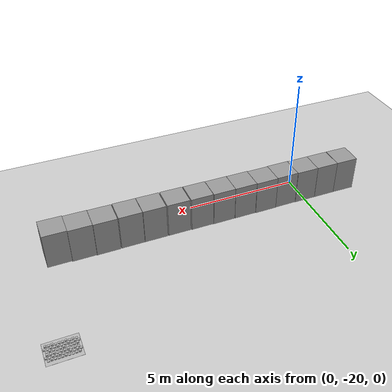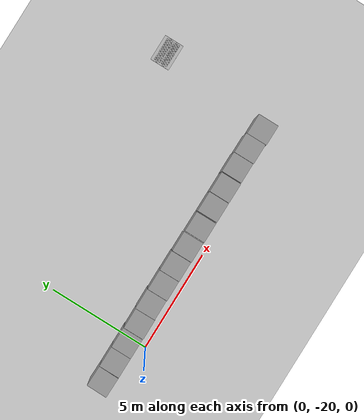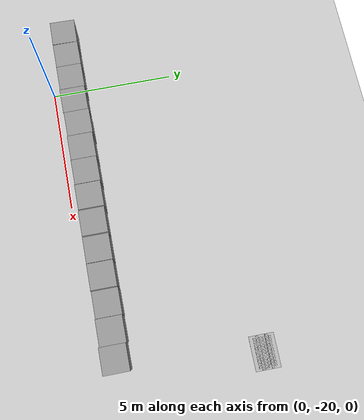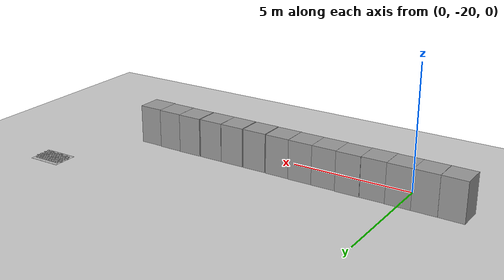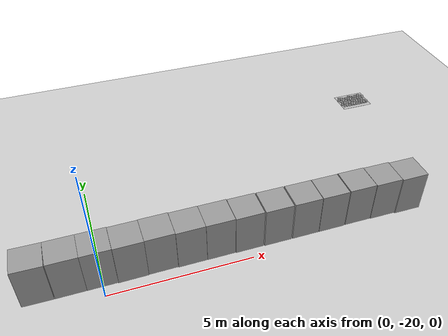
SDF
<sdf version="1.6">
 <world name="default">
  <model name="ground_plane">
   <static>1</static>
   <link name="link">
    <collision name="collision">
     <geometry><plane><normal>0 0 1</normal><size>100 100</size></plane></geometry>
     <surface><friction><ode><mu>100</mu><mu2>50</mu2></ode></friction></surface>
    </collision>
    <visual name="visual">
     <cast_shadows>0</cast_shadows>
     <geometry><plane><normal>0 0 1</normal><size>100 100</size></plane></geometry>
     <material>
      <script><uri>file://media/materials/scripts/gazebo.material</uri><name>Gazebo/Grey</name></script>
     </material>
    </visual>
   </link>
  </model>
  <model name="frc2016_roughterrain_clone_0_clone_clone_3_clone_1_clone_0_clone_clone_2_clone_clone_1">
   <static>1</static>
   <link name="link">
    <visual name="platform">
     <pose>0 0 0.08269 0 -0 0</pose>
     <geometry><box><size>1.27 0.5969 0.003175</size></box></geometry>
    </visual>
    <collision name="platform">
     <pose>0 0 0.08269 0 -0 0</pose>
     <geometry><box><size>1.27 0.5969 0.003175</size></box></geometry>
    </collision>
    <visual name="row1_block1_sm">
     <pose>0.51435 0.1143 0.09698 0 -0 0</pose>
     <geometry><box><size>0.0762 0.0762 0.0254</size></box></geometry>
    </visual>
    <collision name="row1_block1_sm">
     <pose>0.51435 0.1143 0.09698 0 -0 0</pose>
     <geometry><box><size>0.0762 0.0762 0.0254</size></box></geometry>
    </collision>
    <visual name="row1_block2_lg">
     <pose>0.40005 0.1143 0.12238 0 -0 0</pose>
     <geometry><box><size>0.0762 0.0762 0.0762</size></box></geometry>
    </visual>
    <collision name="row1_block2_lg">
     <pose>0.40005 0.1143 0.12238 0 -0 0</pose>
     <geometry><box><size>0.0762 0.0762 0.0762</size></box></geometry>
    </collision>
    <visual name="row1_block3_md">
     <pose>0.28575 0.1143 0.10968 0 -0 0</pose>
     <geometry><box><size>0.0762 0.0762 0.0508</size></box></geometry>
    </visual>
    <collision name="row1_block3_md">
     <pose>0.28575 0.1143 0.10968 0 -0 0</pose>
     <geometry><box><size>0.0762 0.0762 0.0508</size></box></geometry>
    </collision>
    <visual name="row1_block4_sm">
     <pose>0.17145 0.1143 0.09698 0 -0 0</pose>
     <geometry><box><size>0.0762 0.0762 0.0254</size></box></geometry>
    </visual>
    <collision name="row1_block4_sm">
     <pose>0.17145 0.1143 0.09698 0 -0 0</pose>
     <geometry><box><size>0.0762 0.0762 0.0254</size></box></geometry>
    </collision>
    <visual name="row1_block5_md">
     <pose>0.05715 0.1143 0.10968 0 -0 0</pose>
     <geometry><box><size>0.0762 0.0762 0.0508</size></box></geometry>
    </visual>
    <collision name="row1_block5_md">
     <pose>0.05715 0.1143 0.10968 0 -0 0</pose>
     <geometry><box><size>0.0762 0.0762 0.0508</size></box></geometry>
    </collision>
    <visual name="row1_block6_lg">
     <pose>-0.05715 0.1143 0.12238 0 -0 0</pose>
     <geometry><box><size>0.0762 0.0762 0.0762</size></box></geometry>
    </visual>
    <collision name="row1_block6_lg">
     <pose>-0.05715 0.1143 0.12238 0 -0 0</pose>
     <geometry><box><size>0.0762 0.0762 0.0762</size></box></geometry>
    </collision>
    <visual name="row1_block7_sm">
     <pose>-0.17145 0.1143 0.09698 0 -0 0</pose>
     <geometry><box><size>0.0762 0.0762 0.0254</size></box></geometry>
    </visual>
    <collision name="row1_block7_sm">
     <pose>-0.17145 0.1143 0.09698 0 -0 0</pose>
     <geometry><box><size>0.0762 0.0762 0.0254</size></box></geometry>
    </collision>
    <visual name="row1_block8_sm">
     <pose>-0.28575 0.1143 0.09698 0 -0 0</pose>
     <geometry><box><size>0.0762 0.0762 0.0254</size></box></geometry>
    </visual>
    <collision name="row1_block8_sm">
     <pose>-0.28575 0.1143 0.09698 0 -0 0</pose>
     <geometry><box><size>0.0762 0.0762 0.0254</size></box></geometry>
    </collision>
    <visual name="row1_block9_md">
     <pose>-0.40005 0.1143 0.10968 0 -0 0</pose>
     <geometry><box><size>0.0762 0.0762 0.0508</size></box></geometry>
    </visual>
    <collision name="row1_block9_md">
     <pose>-0.40005 0.1143 0.10968 0 -0 0</pose>
     <geometry><box><size>0.0762 0.0762 0.0508</size></box></geometry>
    </collision>
    <visual name="row1_block10_lg">
     <pose>-0.51435 0.1143 0.12238 0 -0 0</pose>
     <geometry><box><size>0.0762 0.0762 0.0762</size></box></geometry>
    </visual>
    <collision name="row1_block10_lg">
     <pose>-0.51435 0.1143 0.12238 0 -0 0</pose>
     <geometry><box><size>0.0762 0.0762 0.0762</size></box></geometry>
    </collision>
    <visual name="row2_block1_md">
     <pose>0.5715 0 0.10968 0 -0 0</pose>
     <geometry><box><size>0.0762 0.0762 0.0508</size></box></geometry>
    </visual>
    <collision name="row2_block1_md">
     <pose>0.5715 0 0.10968 0 -0 0</pose>
     <geometry><box><size>0.0762 0.0762 0.0508</size></box></geometry>
    </collision>
    <visual name="row2_block2_sm">
     <pose>0.4572 0 0.09698 0 -0 0</pose>
     <geometry><box><size>0.0762 0.0762 0.0254</size></box></geometry>
    </visual>
    <collision name="row2_block2_sm">
     <pose>0.4572 0 0.09698 0 -0 0</pose>
     <geometry><box><size>0.0762 0.0762 0.0254</size></box></geometry>
    </collision>
    <visual name="row2_block3_lg">
     <pose>0.3429 0 0.12238 0 -0 0</pose>
     <geometry><box><size>0.0762 0.0762 0.0762</size></box></geometry>
    </visual>
    <collision name="row2_block3_lg">
     <pose>0.3429 0 0.12238 0 -0 0</pose>
     <geometry><box><size>0.0762 0.0762 0.0762</size></box></geometry>
    </collision>
    <visual name="row2_block4_md">
     <pose>0.2286 0 0.10968 0 -0 0</pose>
     <geometry><box><size>0.0762 0.0762 0.0508</size></box></geometry>
    </visual>
    <collision name="row2_block4_md">
     <pose>0.2286 0 0.10968 0 -0 0</pose>
     <geometry><box><size>0.0762 0.0762 0.0508</size></box></geometry>
    </collision>
    <visual name="row2_block5_lg">
     <pose>0.1143 0 0.12238 0 -0 0</pose>
     <geometry><box><size>0.0762 0.0762 0.0762</size></box></geometry>
    </visual>
    <collision name="row2_block5_lg">
     <pose>0.1143 0 0.12238 0 -0 0</pose>
     <geometry><box><size>0.0762 0.0762 0.0762</size></box></geometry>
    </collision>
    <visual name="row2_block6_sm">
     <pose>0 0 0.09698 0 -0 0</pose>
     <geometry><box><size>0.0762 0.0762 0.0254</size></box></geometry>
    </visual>
    <collision name="row2_block6_sm">
     <pose>0 0 0.09698 0 -0 0</pose>
     <geometry><box><size>0.0762 0.0762 0.0254</size></box></geometry>
    </collision>
    <visual name="row2_block7_md">
     <pose>-0.1143 0 0.10968 0 -0 0</pose>
     <geometry><box><size>0.0762 0.0762 0.0508</size></box></geometry>
    </visual>
    <collision name="row2_block7_md">
     <pose>-0.1143 0 0.10968 0 -0 0</pose>
     <geometry><box><size>0.0762 0.0762 0.0508</size></box></geometry>
    </collision>
    <visual name="row2_block8_lg">
     <pose>-0.2286 0 0.12238 0 -0 0</pose>
     <geometry><box><size>0.0762 0.0762 0.0762</size></box></geometry>
    </visual>
    <collision name="row2_block8_lg">
     <pose>-0.2286 0 0.12238 0 -0 0</pose>
     <geometry><box><size>0.0762 0.0762 0.0762</size></box></geometry>
    </collision>
    <visual name="row2_block9_sm">
     <pose>-0.3429 0 0.09698 0 -0 0</pose>
     <geometry><box><size>0.0762 0.0762 0.0254</size></box></geometry>
    </visual>
    <collision name="row2_block9_sm">
     <pose>-0.3429 0 0.09698 0 -0 0</pose>
     <geometry><box><size>0.0762 0.0762 0.0254</size></box></geometry>
    </collision>
    <visual name="row2_block10_lg">
     <pose>-0.4572 0 0.12238 0 -0 0</pose>
     <geometry><box><size>0.0762 0.0762 0.0762</size></box></geometry>
    </visual>
    <collision name="row2_block10_lg">
     <pose>-0.4572 0 0.12238 0 -0 0</pose>
     <geometry><box><size>0.0762 0.0762 0.0762</size></box></geometry>
    </collision>
    <visual name="row2_block11_md">
     <pose>-0.5715 0 0.10968 0 -0 0</pose>
     <geometry><box><size>0.0762 0.0762 0.0508</size></box></geometry>
    </visual>
    <collision name="row2_block11_md">
     <pose>-0.5715 0 0.10968 0 -0 0</pose>
     <geometry><box><size>0.0762 0.0762 0.0508</size></box></geometry>
    </collision>
    <visual name="row3_block1_lg">
     <pose>0.51435 -0.1143 0.12238 0 -0 0</pose>
     <geometry><box><size>0.0762 0.0762 0.0762</size></box></geometry>
    </visual>
    <collision name="row3_block1_lg">
     <pose>0.51435 -0.1143 0.12238 0 -0 0</pose>
     <geometry><box><size>0.0762 0.0762 0.0762</size></box></geometry>
    </collision>
    <visual name="row3_block2_md">
     <pose>0.40005 -0.1143 0.10968 0 -0 0</pose>
     <geometry><box><size>0.0762 0.0762 0.0508</size></box></geometry>
    </visual>
    <collision name="row3_block2_md">
     <pose>0.40005 -0.1143 0.10968 0 -0 0</pose>
     <geometry><box><size>0.0762 0.0762 0.0508</size></box></geometry>
    </collision>
    <visual name="row3_block3_lg">
     <pose>0.28575 -0.1143 0.12238 0 -0 0</pose>
     <geometry><box><size>0.0762 0.0762 0.0762</size></box></geometry>
    </visual>
    <collision name="row3_block3_lg">
     <pose>0.28575 -0.1143 0.12238 0 -0 0</pose>
     <geometry><box><size>0.0762 0.0762 0.0762</size></box></geometry>
    </collision>
    <visual name="row3_block4_sm">
     <pose>0.17145 -0.1143 0.09698 0 -0 0</pose>
     <geometry><box><size>0.0762 0.0762 0.0254</size></box></geometry>
    </visual>
    <collision name="row3_block4_sm">
     <pose>0.17145 -0.1143 0.09698 0 -0 0</pose>
     <geometry><box><size>0.0762 0.0762 0.0254</size></box></geometry>
    </collision>
    <visual name="row3_block5_md">
     <pose>0.05715 -0.1143 0.10968 0 -0 0</pose>
     <geometry><box><size>0.0762 0.0762 0.0508</size></box></geometry>
    </visual>
    <collision name="row3_block5_md">
     <pose>0.05715 -0.1143 0.10968 0 -0 0</pose>
     <geometry><box><size>0.0762 0.0762 0.0508</size></box></geometry>
    </collision>
    <visual name="row3_block6_md">
     <pose>-0.05715 -0.1143 0.10968 0 -0 0</pose>
     <geometry><box><size>0.0762 0.0762 0.0508</size></box></geometry>
    </visual>
    <collision name="row3_block6_md">
     <pose>-0.05715 -0.1143 0.10968 0 -0 0</pose>
     <geometry><box><size>0.0762 0.0762 0.0508</size></box></geometry>
    </collision>
    <visual name="row3_block7_lg">
     <pose>-0.17145 -0.1143 0.12238 0 -0 0</pose>
     <geometry><box><size>0.0762 0.0762 0.0762</size></box></geometry>
    </visual>
    <collision name="row3_block7_lg">
     <pose>-0.17145 -0.1143 0.12238 0 -0 0</pose>
     <geometry><box><size>0.0762 0.0762 0.0762</size></box></geometry>
    </collision>
    <visual name="row3_block8_sm">
     <pose>-0.28575 -0.1143 0.09698 0 -0 0</pose>
     <geometry><box><size>0.0762 0.0762 0.0254</size></box></geometry>
    </visual>
    <collision name="row3_block8_sm">
     <pose>-0.28575 -0.1143 0.09698 0 -0 0</pose>
     <geometry><box><size>0.0762 0.0762 0.0254</size></box></geometry>
    </collision>
    <visual name="row3_block9_md">
     <pose>-0.40005 -0.1143 0.10968 0 -0 0</pose>
     <geometry><box><size>0.0762 0.0762 0.0508</size></box></geometry>
    </visual>
    <collision name="row3_block9_md">
     <pose>-0.40005 -0.1143 0.10968 0 -0 0</pose>
     <geometry><box><size>0.0762 0.0762 0.0508</size></box></geometry>
    </collision>
    <visual name="row3_block10_sm">
     <pose>-0.51435 -0.1143 0.09698 0 -0 0</pose>
     <geometry><box><size>0.0762 0.0762 0.0254</size></box></geometry>
    </visual>
    <collision name="row3_block10_sm">
     <pose>-0.51435 -0.1143 0.09698 0 -0 0</pose>
     <geometry><box><size>0.0762 0.0762 0.0254</size></box></geometry>
    </collision>
   </link>
   <pose>11.9075 -13.555 0.826533 0 -0 0</pose>
  </model>
  <model name="frc2016_roughterrain_clone_0_clone_clone_3_clone_1_clone_0_clone_clone_2_clone_clone_1_clone">
   <static>1</static>
   <link name="link">
    <visual name="platform">
     <pose>0 0 0.08269 0 -0 0</pose>
     <geometry><box><size>1.27 0.5969 0.003175</size></box></geometry>
    </visual>
    <collision name="platform">
     <pose>0 0 0.08269 0 -0 0</pose>
     <geometry><box><size>1.27 0.5969 0.003175</size></box></geometry>
    </collision>
    <visual name="row1_block1_sm">
     <pose>0.51435 0.1143 0.09698 0 -0 0</pose>
     <geometry><box><size>0.0762 0.0762 0.0254</size></box></geometry>
    </visual>
    <collision name="row1_block1_sm">
     <pose>0.51435 0.1143 0.09698 0 -0 0</pose>
     <geometry><box><size>0.0762 0.0762 0.0254</size></box></geometry>
    </collision>
    <visual name="row1_block2_lg">
     <pose>0.40005 0.1143 0.12238 0 -0 0</pose>
     <geometry><box><size>0.0762 0.0762 0.0762</size></box></geometry>
    </visual>
    <collision name="row1_block2_lg">
     <pose>0.40005 0.1143 0.12238 0 -0 0</pose>
     <geometry><box><size>0.0762 0.0762 0.0762</size></box></geometry>
    </collision>
    <visual name="row1_block3_md">
     <pose>0.28575 0.1143 0.10968 0 -0 0</pose>
     <geometry><box><size>0.0762 0.0762 0.0508</size></box></geometry>
    </visual>
    <collision name="row1_block3_md">
     <pose>0.28575 0.1143 0.10968 0 -0 0</pose>
     <geometry><box><size>0.0762 0.0762 0.0508</size></box></geometry>
    </collision>
    <visual name="row1_block4_sm">
     <pose>0.17145 0.1143 0.09698 0 -0 0</pose>
     <geometry><box><size>0.0762 0.0762 0.0254</size></box></geometry>
    </visual>
    <collision name="row1_block4_sm">
     <pose>0.17145 0.1143 0.09698 0 -0 0</pose>
     <geometry><box><size>0.0762 0.0762 0.0254</size></box></geometry>
    </collision>
    <visual name="row1_block5_md">
     <pose>0.05715 0.1143 0.10968 0 -0 0</pose>
     <geometry><box><size>0.0762 0.0762 0.0508</size></box></geometry>
    </visual>
    <collision name="row1_block5_md">
     <pose>0.05715 0.1143 0.10968 0 -0 0</pose>
     <geometry><box><size>0.0762 0.0762 0.0508</size></box></geometry>
    </collision>
    <visual name="row1_block6_lg">
     <pose>-0.05715 0.1143 0.12238 0 -0 0</pose>
     <geometry><box><size>0.0762 0.0762 0.0762</size></box></geometry>
    </visual>
    <collision name="row1_block6_lg">
     <pose>-0.05715 0.1143 0.12238 0 -0 0</pose>
     <geometry><box><size>0.0762 0.0762 0.0762</size></box></geometry>
    </collision>
    <visual name="row1_block7_sm">
     <pose>-0.17145 0.1143 0.09698 0 -0 0</pose>
     <geometry><box><size>0.0762 0.0762 0.0254</size></box></geometry>
    </visual>
    <collision name="row1_block7_sm">
     <pose>-0.17145 0.1143 0.09698 0 -0 0</pose>
     <geometry><box><size>0.0762 0.0762 0.0254</size></box></geometry>
    </collision>
    <visual name="row1_block8_sm">
     <pose>-0.28575 0.1143 0.09698 0 -0 0</pose>
     <geometry><box><size>0.0762 0.0762 0.0254</size></box></geometry>
    </visual>
    <collision name="row1_block8_sm">
     <pose>-0.28575 0.1143 0.09698 0 -0 0</pose>
     <geometry><box><size>0.0762 0.0762 0.0254</size></box></geometry>
    </collision>
    <visual name="row1_block9_md">
     <pose>-0.40005 0.1143 0.10968 0 -0 0</pose>
     <geometry><box><size>0.0762 0.0762 0.0508</size></box></geometry>
    </visual>
    <collision name="row1_block9_md">
     <pose>-0.40005 0.1143 0.10968 0 -0 0</pose>
     <geometry><box><size>0.0762 0.0762 0.0508</size></box></geometry>
    </collision>
    <visual name="row1_block10_lg">
     <pose>-0.51435 0.1143 0.12238 0 -0 0</pose>
     <geometry><box><size>0.0762 0.0762 0.0762</size></box></geometry>
    </visual>
    <collision name="row1_block10_lg">
     <pose>-0.51435 0.1143 0.12238 0 -0 0</pose>
     <geometry><box><size>0.0762 0.0762 0.0762</size></box></geometry>
    </collision>
    <visual name="row2_block1_md">
     <pose>0.5715 0 0.10968 0 -0 0</pose>
     <geometry><box><size>0.0762 0.0762 0.0508</size></box></geometry>
    </visual>
    <collision name="row2_block1_md">
     <pose>0.5715 0 0.10968 0 -0 0</pose>
     <geometry><box><size>0.0762 0.0762 0.0508</size></box></geometry>
    </collision>
    <visual name="row2_block2_sm">
     <pose>0.4572 0 0.09698 0 -0 0</pose>
     <geometry><box><size>0.0762 0.0762 0.0254</size></box></geometry>
    </visual>
    <collision name="row2_block2_sm">
     <pose>0.4572 0 0.09698 0 -0 0</pose>
     <geometry><box><size>0.0762 0.0762 0.0254</size></box></geometry>
    </collision>
    <visual name="row2_block3_lg">
     <pose>0.3429 0 0.12238 0 -0 0</pose>
     <geometry><box><size>0.0762 0.0762 0.0762</size></box></geometry>
    </visual>
    <collision name="row2_block3_lg">
     <pose>0.3429 0 0.12238 0 -0 0</pose>
     <geometry><box><size>0.0762 0.0762 0.0762</size></box></geometry>
    </collision>
    <visual name="row2_block4_md">
     <pose>0.2286 0 0.10968 0 -0 0</pose>
     <geometry><box><size>0.0762 0.0762 0.0508</size></box></geometry>
    </visual>
    <collision name="row2_block4_md">
     <pose>0.2286 0 0.10968 0 -0 0</pose>
     <geometry><box><size>0.0762 0.0762 0.0508</size></box></geometry>
    </collision>
    <visual name="row2_block5_lg">
     <pose>0.1143 0 0.12238 0 -0 0</pose>
     <geometry><box><size>0.0762 0.0762 0.0762</size></box></geometry>
    </visual>
    <collision name="row2_block5_lg">
     <pose>0.1143 0 0.12238 0 -0 0</pose>
     <geometry><box><size>0.0762 0.0762 0.0762</size></box></geometry>
    </collision>
    <visual name="row2_block6_sm">
     <pose>0 0 0.09698 0 -0 0</pose>
     <geometry><box><size>0.0762 0.0762 0.0254</size></box></geometry>
    </visual>
    <collision name="row2_block6_sm">
     <pose>0 0 0.09698 0 -0 0</pose>
     <geometry><box><size>0.0762 0.0762 0.0254</size></box></geometry>
    </collision>
    <visual name="row2_block7_md">
     <pose>-0.1143 0 0.10968 0 -0 0</pose>
     <geometry><box><size>0.0762 0.0762 0.0508</size></box></geometry>
    </visual>
    <collision name="row2_block7_md">
     <pose>-0.1143 0 0.10968 0 -0 0</pose>
     <geometry><box><size>0.0762 0.0762 0.0508</size></box></geometry>
    </collision>
    <visual name="row2_block8_lg">
     <pose>-0.2286 0 0.12238 0 -0 0</pose>
     <geometry><box><size>0.0762 0.0762 0.0762</size></box></geometry>
    </visual>
    <collision name="row2_block8_lg">
     <pose>-0.2286 0 0.12238 0 -0 0</pose>
     <geometry><box><size>0.0762 0.0762 0.0762</size></box></geometry>
    </collision>
    <visual name="row2_block9_sm">
     <pose>-0.3429 0 0.09698 0 -0 0</pose>
     <geometry><box><size>0.0762 0.0762 0.0254</size></box></geometry>
    </visual>
    <collision name="row2_block9_sm">
     <pose>-0.3429 0 0.09698 0 -0 0</pose>
     <geometry><box><size>0.0762 0.0762 0.0254</size></box></geometry>
    </collision>
    <visual name="row2_block10_lg">
     <pose>-0.4572 0 0.12238 0 -0 0</pose>
     <geometry><box><size>0.0762 0.0762 0.0762</size></box></geometry>
    </visual>
    <collision name="row2_block10_lg">
     <pose>-0.4572 0 0.12238 0 -0 0</pose>
     <geometry><box><size>0.0762 0.0762 0.0762</size></box></geometry>
    </collision>
    <visual name="row2_block11_md">
     <pose>-0.5715 0 0.10968 0 -0 0</pose>
     <geometry><box><size>0.0762 0.0762 0.0508</size></box></geometry>
    </visual>
    <collision name="row2_block11_md">
     <pose>-0.5715 0 0.10968 0 -0 0</pose>
     <geometry><box><size>0.0762 0.0762 0.0508</size></box></geometry>
    </collision>
    <visual name="row3_block1_lg">
     <pose>0.51435 -0.1143 0.12238 0 -0 0</pose>
     <geometry><box><size>0.0762 0.0762 0.0762</size></box></geometry>
    </visual>
    <collision name="row3_block1_lg">
     <pose>0.51435 -0.1143 0.12238 0 -0 0</pose>
     <geometry><box><size>0.0762 0.0762 0.0762</size></box></geometry>
    </collision>
    <visual name="row3_block2_md">
     <pose>0.40005 -0.1143 0.10968 0 -0 0</pose>
     <geometry><box><size>0.0762 0.0762 0.0508</size></box></geometry>
    </visual>
    <collision name="row3_block2_md">
     <pose>0.40005 -0.1143 0.10968 0 -0 0</pose>
     <geometry><box><size>0.0762 0.0762 0.0508</size></box></geometry>
    </collision>
    <visual name="row3_block3_lg">
     <pose>0.28575 -0.1143 0.12238 0 -0 0</pose>
     <geometry><box><size>0.0762 0.0762 0.0762</size></box></geometry>
    </visual>
    <collision name="row3_block3_lg">
     <pose>0.28575 -0.1143 0.12238 0 -0 0</pose>
     <geometry><box><size>0.0762 0.0762 0.0762</size></box></geometry>
    </collision>
    <visual name="row3_block4_sm">
     <pose>0.17145 -0.1143 0.09698 0 -0 0</pose>
     <geometry><box><size>0.0762 0.0762 0.0254</size></box></geometry>
    </visual>
    <collision name="row3_block4_sm">
     <pose>0.17145 -0.1143 0.09698 0 -0 0</pose>
     <geometry><box><size>0.0762 0.0762 0.0254</size></box></geometry>
    </collision>
    <visual name="row3_block5_md">
     <pose>0.05715 -0.1143 0.10968 0 -0 0</pose>
     <geometry><box><size>0.0762 0.0762 0.0508</size></box></geometry>
    </visual>
    <collision name="row3_block5_md">
     <pose>0.05715 -0.1143 0.10968 0 -0 0</pose>
     <geometry><box><size>0.0762 0.0762 0.0508</size></box></geometry>
    </collision>
    <visual name="row3_block6_md">
     <pose>-0.05715 -0.1143 0.10968 0 -0 0</pose>
     <geometry><box><size>0.0762 0.0762 0.0508</size></box></geometry>
    </visual>
    <collision name="row3_block6_md">
     <pose>-0.05715 -0.1143 0.10968 0 -0 0</pose>
     <geometry><box><size>0.0762 0.0762 0.0508</size></box></geometry>
    </collision>
    <visual name="row3_block7_lg">
     <pose>-0.17145 -0.1143 0.12238 0 -0 0</pose>
     <geometry><box><size>0.0762 0.0762 0.0762</size></box></geometry>
    </visual>
    <collision name="row3_block7_lg">
     <pose>-0.17145 -0.1143 0.12238 0 -0 0</pose>
     <geometry><box><size>0.0762 0.0762 0.0762</size></box></geometry>
    </collision>
    <visual name="row3_block8_sm">
     <pose>-0.28575 -0.1143 0.09698 0 -0 0</pose>
     <geometry><box><size>0.0762 0.0762 0.0254</size></box></geometry>
    </visual>
    <collision name="row3_block8_sm">
     <pose>-0.28575 -0.1143 0.09698 0 -0 0</pose>
     <geometry><box><size>0.0762 0.0762 0.0254</size></box></geometry>
    </collision>
    <visual name="row3_block9_md">
     <pose>-0.40005 -0.1143 0.10968 0 -0 0</pose>
     <geometry><box><size>0.0762 0.0762 0.0508</size></box></geometry>
    </visual>
    <collision name="row3_block9_md">
     <pose>-0.40005 -0.1143 0.10968 0 -0 0</pose>
     <geometry><box><size>0.0762 0.0762 0.0508</size></box></geometry>
    </collision>
    <visual name="row3_block10_sm">
     <pose>-0.51435 -0.1143 0.09698 0 -0 0</pose>
     <geometry><box><size>0.0762 0.0762 0.0254</size></box></geometry>
    </visual>
    <collision name="row3_block10_sm">
     <pose>-0.51435 -0.1143 0.09698 0 -0 0</pose>
     <geometry><box><size>0.0762 0.0762 0.0254</size></box></geometry>
    </collision>
   </link>
   <pose>11.907 -13.9116 0.826533 0 -0 0</pose>
  </model>
  <model name="unit_box_clone_10_clone_13_clone_0_clone_14">
   <pose>11.128 -19.1793 0.799367 6e-06 -0 -0.000375</pose>
   <link name="link">
    <inertial>
     <mass>1</mass>
     <inertia>
      <ixx>0.166667</ixx>
      <ixy>0</ixy>
      <ixz>0</ixz>
      <iyy>0.166667</iyy>
      <iyz>0</iyz>
      <izz>0.166667</izz>
     </inertia>
    </inertial>
    <collision name="collision"><geometry><box><size>1 1 1.59874</size></box></geometry></collision>
    <visual name="visual">
     <geometry><box><size>1 1 1.59874</size></box></geometry>
     <material>
      <script><name>Gazebo/Grey</name><uri>file://media/materials/scripts/gazebo.material</uri></script>
     </material>
    </visual>
   </link>
  </model>
  <model name="unit_box_clone_10_clone_13_clone_0_clone_15">
   <pose>10.1281 -19.1397 0.799367 -1e-06 4e-06 -0.000376</pose>
   <link name="link">
    <inertial>
     <mass>1</mass>
     <inertia>
      <ixx>0.166667</ixx>
      <ixy>0</ixy>
      <ixz>0</ixz>
      <iyy>0.166667</iyy>
      <iyz>0</iyz>
      <izz>0.166667</izz>
     </inertia>
    </inertial>
    <collision name="collision"><geometry><box><size>1 1 1.59874</size></box></geometry></collision>
    <visual name="visual">
     <geometry><box><size>1 1 1.59874</size></box></geometry>
     <material>
      <script><name>Gazebo/Grey</name><uri>file://media/materials/scripts/gazebo.material</uri></script>
     </material>
    </visual>
   </link>
  </model>
  <model name="unit_box_clone_10_clone_13_clone_0_clone_16">
   <pose>9.12384 -19.1206 0.79937 -0 -0 -3e-06</pose>
   <link name="link">
    <inertial>
     <mass>1</mass>
     <inertia>
      <ixx>0.166667</ixx>
      <ixy>0</ixy>
      <ixz>0</ixz>
      <iyy>0.166667</iyy>
      <iyz>0</iyz>
      <izz>0.166667</izz>
     </inertia>
    </inertial>
    <collision name="collision"><geometry><box><size>1 1 1.59874</size></box></geometry></collision>
    <visual name="visual">
     <geometry><box><size>1 1 1.59874</size></box></geometry>
     <material>
      <script><name>Gazebo/Grey</name><uri>file://media/materials/scripts/gazebo.material</uri></script>
     </material>
    </visual>
   </link>
  </model>
  <model name="unit_box_clone_10_clone_13_clone_0_clone_17">
   <pose>8.08967 -19.1326 0.79937 -0 -0 -3e-06</pose>
   <link name="link">
    <inertial>
     <mass>1</mass>
     <inertia>
      <ixx>0.166667</ixx>
      <ixy>0</ixy>
      <ixz>0</ixz>
      <iyy>0.166667</iyy>
      <iyz>0</iyz>
      <izz>0.166667</izz>
     </inertia>
    </inertial>
    <collision name="collision"><geometry><box><size>1 1 1.59874</size></box></geometry></collision>
    <visual name="visual">
     <geometry><box><size>1 1 1.59874</size></box></geometry>
     <material>
      <script><name>Gazebo/Grey</name><uri>file://media/materials/scripts/gazebo.material</uri></script>
     </material>
    </visual>
   </link>
  </model>
  <model name="unit_box_clone_10_clone_13_clone_0_clone_18">
   <pose>7.07786 -19.1292 0.79937 -0 -0 -3e-06</pose>
   <link name="link">
    <inertial>
     <mass>1</mass>
     <inertia>
      <ixx>0.166667</ixx>
      <ixy>0</ixy>
      <ixz>0</ixz>
      <iyy>0.166667</iyy>
      <iyz>0</iyz>
      <izz>0.166667</izz>
     </inertia>
    </inertial>
    <collision name="collision"><geometry><box><size>1 1 1.59874</size></box></geometry></collision>
    <visual name="visual">
     <geometry><box><size>1 1 1.59874</size></box></geometry>
     <material>
      <script><name>Gazebo/Grey</name><uri>file://media/materials/scripts/gazebo.material</uri></script>
     </material>
    </visual>
   </link>
  </model>
  <model name="unit_box_clone_10_clone_13_clone_0_clone_19">
   <pose>6.03395 -19.1265 0.79937 -0 -0 -3e-06</pose>
   <link name="link">
    <inertial>
     <mass>1</mass>
     <inertia>
      <ixx>0.166667</ixx>
      <ixy>0</ixy>
      <ixz>0</ixz>
      <iyy>0.166667</iyy>
      <iyz>0</iyz>
      <izz>0.166667</izz>
     </inertia>
    </inertial>
    <collision name="collision"><geometry><box><size>1 1 1.59874</size></box></geometry></collision>
    <visual name="visual">
     <geometry><box><size>1 1 1.59874</size></box></geometry>
     <material>
      <script><name>Gazebo/Grey</name><uri>file://media/materials/scripts/gazebo.material</uri></script>
     </material>
    </visual>
   </link>
  </model>
  <model name="unit_box_clone_10_clone_13_clone_0_clone_20">
   <pose>4.99604 -19.1105 0.799366 2e-06 -6e-06 0.003361</pose>
   <link name="link">
    <inertial>
     <mass>1</mass>
     <inertia>
      <ixx>0.166667</ixx>
      <ixy>0</ixy>
      <ixz>0</ixz>
      <iyy>0.166667</iyy>
      <iyz>0</iyz>
      <izz>0.166667</izz>
     </inertia>
    </inertial>
    <collision name="collision"><geometry><box><size>1 1 1.59874</size></box></geometry></collision>
    <visual name="visual">
     <geometry><box><size>1 1 1.59874</size></box></geometry>
     <material>
      <script><name>Gazebo/Grey</name><uri>file://media/materials/scripts/gazebo.material</uri></script>
     </material>
    </visual>
   </link>
  </model>
  <model name="unit_box_clone_10_clone_13_clone_0_clone_21">
   <pose>3.98714 -19.0947 0.799366 -2e-06 -6e-06 0.004881</pose>
   <link name="link">
    <inertial>
     <mass>1</mass>
     <inertia>
      <ixx>0.166667</ixx>
      <ixy>0</ixy>
      <ixz>0</ixz>
      <iyy>0.166667</iyy>
      <iyz>0</iyz>
      <izz>0.166667</izz>
     </inertia>
    </inertial>
    <collision name="collision"><geometry><box><size>1 1 1.59874</size></box></geometry></collision>
    <visual name="visual">
     <geometry><box><size>1 1 1.59874</size></box></geometry>
     <material>
      <script><name>Gazebo/Grey</name><uri>file://media/materials/scripts/gazebo.material</uri></script>
     </material>
    </visual>
   </link>
  </model>
  <model name="unit_box_clone_10_clone_13_clone_0_clone_22">
   <pose>2.98569 -19.0927 0.799366 -6e-06 2e-06 0.005443</pose>
   <link name="link">
    <inertial>
     <mass>1</mass>
     <inertia>
      <ixx>0.166667</ixx>
      <ixy>0</ixy>
      <ixz>0</ixz>
      <iyy>0.166667</iyy>
      <iyz>0</iyz>
      <izz>0.166667</izz>
     </inertia>
    </inertial>
    <collision name="collision"><geometry><box><size>1 1 1.59874</size></box></geometry></collision>
    <visual name="visual">
     <geometry><box><size>1 1 1.59874</size></box></geometry>
     <material>
      <script><name>Gazebo/Grey</name><uri>file://media/materials/scripts/gazebo.material</uri></script>
     </material>
    </visual>
   </link>
  </model>
  <model name="unit_box_clone_10_clone_13_clone_0_clone_23">
   <pose>1.98465 -19.0753 0.79937 0 -0 0.006802</pose>
   <link name="link">
    <inertial>
     <mass>1</mass>
     <inertia>
      <ixx>0.166667</ixx>
      <ixy>0</ixy>
      <ixz>0</ixz>
      <iyy>0.166667</iyy>
      <iyz>0</iyz>
      <izz>0.166667</izz>
     </inertia>
    </inertial>
    <collision name="collision"><geometry><box><size>1 1 1.59874</size></box></geometry></collision>
    <visual name="visual">
     <geometry><box><size>1 1 1.59874</size></box></geometry>
     <material>
      <script><name>Gazebo/Grey</name><uri>file://media/materials/scripts/gazebo.material</uri></script>
     </material>
    </visual>
   </link>
  </model>
  <model name="unit_box_clone_10_clone_13_clone_0_clone_24">
   <pose>0.984468 -19.0956 0.799371 -1e-06 -0 0.007276</pose>
   <link name="link">
    <inertial>
     <mass>1</mass>
     <inertia>
      <ixx>0.166667</ixx>
      <ixy>0</ixy>
      <ixz>0</ixz>
      <iyy>0.166667</iyy>
      <iyz>0</iyz>
      <izz>0.166667</izz>
     </inertia>
    </inertial>
    <collision name="collision"><geometry><box><size>1 1 1.59874</size></box></geometry></collision>
    <visual name="visual">
     <geometry><box><size>1 1 1.59874</size></box></geometry>
     <material>
      <script><name>Gazebo/Grey</name><uri>file://media/materials/scripts/gazebo.material</uri></script>
     </material>
    </visual>
   </link>
  </model>
  <model name="unit_box_clone_10_clone_13_clone_0_clone_25">
   <pose>-0.018312 -19.0818 0.799367 0 6e-06 0.001955</pose>
   <link name="link">
    <inertial>
     <mass>1</mass>
     <inertia>
      <ixx>0.166667</ixx>
      <ixy>0</ixy>
      <ixz>0</ixz>
      <iyy>0.166667</iyy>
      <iyz>0</iyz>
      <izz>0.166667</izz>
     </inertia>
    </inertial>
    <collision name="collision"><geometry><box><size>1 1 1.59874</size></box></geometry></collision>
    <visual name="visual">
     <geometry><box><size>1 1 1.59874</size></box></geometry>
     <material>
      <script><name>Gazebo/Grey</name><uri>file://media/materials/scripts/gazebo.material</uri></script>
     </material>
    </visual>
   </link>
  </model>
  <model name="unit_box_clone_10_clone_13_clone_0_clone_26">
   <pose>-1.01832 -19.0804 0.799366 -4e-06 4e-06 0.001955</pose>
   <link name="link">
    <inertial>
     <mass>1</mass>
     <inertia>
      <ixx>0.166667</ixx>
      <ixy>0</ixy>
      <ixz>0</ixz>
      <iyy>0.166667</iyy>
      <iyz>0</iyz>
      <izz>0.166667</izz>
     </inertia>
    </inertial>
    <collision name="collision"><geometry><box><size>1 1 1.59874</size></box></geometry></collision>
    <visual name="visual">
     <geometry><box><size>1 1 1.59874</size></box></geometry>
     <material>
      <script><name>Gazebo/Grey</name><uri>file://media/materials/scripts/gazebo.material</uri></script>
     </material>
    </visual>
   </link>
  </model>
  <model name="unit_box_clone_10_clone_13_clone_0_clone_27">
   <pose>-2.02874 -19.0742 0.799371 -0 1e-06 -0.017168</pose>
   <link name="link">
    <inertial>
     <mass>1</mass>
     <inertia>
      <ixx>0.166667</ixx>
      <ixy>0</ixy>
      <ixz>0</ixz>
      <iyy>0.166667</iyy>
      <iyz>0</iyz>
      <izz>0.166667</izz>
     </inertia>
    </inertial>
    <collision name="collision"><geometry><box><size>1 1 1.59874</size></box></geometry></collision>
    <visual name="visual">
     <geometry><box><size>1 1 1.59874</size></box></geometry>
     <material>
      <script><name>Gazebo/Grey</name><uri>file://media/materials/scripts/gazebo.material</uri></script>
     </material>
    </visual>
   </link>
  </model>
 </world>
</sdf>
